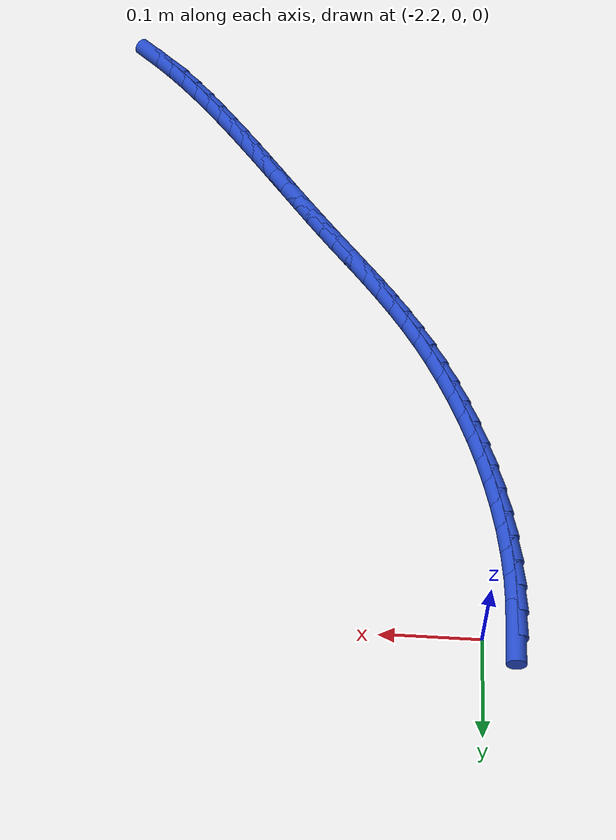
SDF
<sdf version="1.6">
 <world name="default">
  <model name="ground_plane">
   <static>1</static>
   <link name="link">
    <collision name="collision">
     <geometry><plane><normal>0 0 1</normal><size>100 100</size></plane></geometry>
     <surface><friction><ode><mu>100</mu><mu2>50</mu2></ode></friction></surface>
    </collision>
    <visual name="visual">
     <cast_shadows>0</cast_shadows>
     <geometry><plane><normal>0 0 1</normal><size>100 100</size></plane></geometry>
     <material>
      <script><uri>file://media/materials/scripts/gazebo.material</uri><name>Gazebo/WhiteGlow</name></script>
     </material>
    </visual>
   </link>
  </model>
  <model name="line">
   <link name="link_141">
    <pose>-2.2317835806611317 -0.011039165565982069 0.01 0 1.57 1.5650866040024527</pose>
    <collision name="collision">
     <geometry><cylinder><radius>0.01</radius><length>0.08</length></cylinder></geometry>
    </collision>
    <visual name="visual">
     <material>
      <script><name>Gazebo/Blue</name><uri>file://media/materials/scripts/gazebo.material</uri></script>
     </material>
     <geometry><cylinder><radius>0.01</radius><length>0.08</length></cylinder></geometry>
    </visual>
   </link>
   <link name="link_142">
    <pose>-2.2319349309366285 -0.037546342231970925 0.01 0 1.57 -1.5199906018006</pose>
    <collision name="collision">
     <geometry><cylinder><radius>0.01</radius><length>0.08</length></cylinder></geometry>
    </collision>
    <visual name="visual">
     <material>
      <script><name>Gazebo/Blue</name><uri>file://media/materials/scripts/gazebo.material</uri></script>
     </material>
     <geometry><cylinder><radius>0.01</radius><length>0.08</length></cylinder></geometry>
    </visual>
   </link>
   <link name="link_143">
    <pose>-2.230573007580512 -0.06432976764062222 0.01 0 1.57 -1.4671880170082137</pose>
    <collision name="collision">
     <geometry><cylinder><radius>0.01</radius><length>0.08</length></cylinder></geometry>
    </collision>
    <visual name="visual">
     <material>
      <script><name>Gazebo/Blue</name><uri>file://media/materials/scripts/gazebo.material</uri></script>
     </material>
     <geometry><cylinder><radius>0.01</radius><length>0.08</length></cylinder></geometry>
    </visual>
   </link>
   <link name="link_144">
    <pose>-2.2277693916244923 -0.09129263191255127 0.01 0 1.57 -1.417681721359007</pose>
    <collision name="collision">
     <geometry><cylinder><radius>0.01</radius><length>0.08</length></cylinder></geometry>
    </collision>
    <visual name="visual">
     <material>
      <script><name>Gazebo/Blue</name><uri>file://media/materials/scripts/gazebo.material</uri></script>
     </material>
     <geometry><cylinder><radius>0.01</radius><length>0.08</length></cylinder></geometry>
    </visual>
   </link>
   <link name="link_145">
    <pose>-2.223595664100281 -0.1183381251683735 0.01 0 1.57 -1.3710543251712444</pose>
    <collision name="collision">
     <geometry><cylinder><radius>0.01</radius><length>0.08</length></cylinder></geometry>
    </collision>
    <visual name="visual">
     <material>
      <script><name>Gazebo/Blue</name><uri>file://media/materials/scripts/gazebo.material</uri></script>
     </material>
     <geometry><cylinder><radius>0.01</radius><length>0.08</length></cylinder></geometry>
    </visual>
   </link>
   <link name="link_146">
    <pose>-2.218123406039591 -0.14536943752870501 0.01 0 1.57 -1.3268973169500156</pose>
    <collision name="collision">
     <geometry><cylinder><radius>0.01</radius><length>0.08</length></cylinder></geometry>
    </collision>
    <visual name="visual">
     <material>
      <script><name>Gazebo/Blue</name><uri>file://media/materials/scripts/gazebo.material</uri></script>
     </material>
     <geometry><cylinder><radius>0.01</radius><length>0.08</length></cylinder></geometry>
    </visual>
   </link>
   <link name="link_147">
    <pose>-2.2114241984741336 -0.17228975911415945 0.01 0 1.57 -1.2848154424501188</pose>
    <collision name="collision">
     <geometry><cylinder><radius>0.01</radius><length>0.08</length></cylinder></geometry>
    </collision>
    <visual name="visual">
     <material>
      <script><name>Gazebo/Blue</name><uri>file://media/materials/scripts/gazebo.material</uri></script>
     </material>
     <geometry><cylinder><radius>0.01</radius><length>0.08</length></cylinder></geometry>
    </visual>
   </link>
   <link name="link_148">
    <pose>-2.2035696224356203 -0.19900228004535297 0.01 0 1.57 -1.2444272665834928</pose>
    <collision name="collision">
     <geometry><cylinder><radius>0.01</radius><length>0.08</length></cylinder></geometry>
    </collision>
    <visual name="visual">
     <material>
      <script><name>Gazebo/Blue</name><uri>file://media/materials/scripts/gazebo.material</uri></script>
     </material>
     <geometry><cylinder><radius>0.01</radius><length>0.08</length></cylinder></geometry>
    </visual>
   </link>
   <link name="link_149">
    <pose>-2.1946312589557637 -0.225410190442901 0.01 0 1.57 -1.205363018754189</pose>
    <collision name="collision">
     <geometry><cylinder><radius>0.01</radius><length>0.08</length></cylinder></geometry>
    </collision>
    <visual name="visual">
     <material>
      <script><name>Gazebo/Blue</name><uri>file://media/materials/scripts/gazebo.material</uri></script>
     </material>
     <geometry><cylinder><radius>0.01</radius><length>0.08</length></cylinder></geometry>
    </visual>
   </link>
   <link name="link_150">
    <pose>-2.1846806890662753 -0.2514166804274188 0.01 0 1.57 -1.1672604564578088</pose>
    <collision name="collision">
     <geometry><cylinder><radius>0.01</radius><length>0.08</length></cylinder></geometry>
    </collision>
    <visual name="visual">
     <material>
      <script><name>Gazebo/Blue</name><uri>file://media/materials/scripts/gazebo.material</uri></script>
     </material>
     <geometry><cylinder><radius>0.01</radius><length>0.08</length></cylinder></geometry>
    </visual>
   </link>
   <link name="link_151">
    <pose>-2.1737894937988664 -0.2769249401195216 0.01 0 1.57 -1.1297591747508984</pose>
    <collision name="collision">
     <geometry><cylinder><radius>0.01</radius><length>0.08</length></cylinder></geometry>
    </collision>
    <visual name="visual">
     <material>
      <script><name>Gazebo/Blue</name><uri>file://media/materials/scripts/gazebo.material</uri></script>
     </material>
     <geometry><cylinder><radius>0.01</radius><length>0.08</length></cylinder></geometry>
    </visual>
   </link>
   <link name="link_152">
    <pose>-2.1620292541852497 -0.30183815963982497 0.01 0 1.57 -1.0924935390199184</pose>
    <collision name="collision">
     <geometry><cylinder><radius>0.01</radius><length>0.08</length></cylinder></geometry>
    </collision>
    <visual name="visual">
     <material>
      <script><name>Gazebo/Blue</name><uri>file://media/materials/scripts/gazebo.material</uri></script>
     </material>
     <geometry><cylinder><radius>0.01</radius><length>0.08</length></cylinder></geometry>
    </visual>
   </link>
   <link name="link_153">
    <pose>-2.1494715512571365 -0.3260595291089441 0.01 0 1.57 -1.0550842123099282</pose>
    <collision name="collision">
     <geometry><cylinder><radius>0.01</radius><length>0.08</length></cylinder></geometry>
    </collision>
    <visual name="visual">
     <material>
      <script><name>Gazebo/Blue</name><uri>file://media/materials/scripts/gazebo.material</uri></script>
     </material>
     <geometry><cylinder><radius>0.01</radius><length>0.08</length></cylinder></geometry>
    </visual>
   </link>
   <link name="link_154">
    <pose>-2.1361879660462386 -0.34949223864749424 0.01 0 1.57 -1.0171749786502864</pose>
    <collision name="collision">
     <geometry><cylinder><radius>0.01</radius><length>0.08</length></cylinder></geometry>
    </collision>
    <visual name="visual">
     <material>
      <script><name>Gazebo/Blue</name><uri>file://media/materials/scripts/gazebo.material</uri></script>
     </material>
     <geometry><cylinder><radius>0.01</radius><length>0.08</length></cylinder></geometry>
    </visual>
   </link>
   <link name="link_155">
    <pose>-2.1222503901123013 -0.372041340900433 0.01 0 1.57 -0.9810798189404537</pose>
    <collision name="collision">
     <geometry><cylinder><radius>0.01</radius><length>0.08</length></cylinder></geometry>
    </collision>
    <visual name="visual">
     <material>
      <script><name>Gazebo/Blue</name><uri>file://media/materials/scripts/gazebo.material</uri></script>
     </material>
     <geometry><cylinder><radius>0.01</radius><length>0.08</length></cylinder></geometry>
    </visual>
   </link>
   <link name="link_156">
    <pose>-2.107747838435275 -0.39371459352975935 0.01 0 1.57 -0.9511210106473051</pose>
    <collision name="collision">
     <geometry><cylinder><radius>0.01</radius><length>0.08</length></cylinder></geometry>
    </collision>
    <visual name="visual">
     <material>
      <script><name>Gazebo/Blue</name><uri>file://media/materials/scripts/gazebo.material</uri></script>
     </material>
     <geometry><cylinder><radius>0.01</radius><length>0.08</length></cylinder></geometry>
    </visual>
   </link>
   <link name="link_157">
    <pose>-2.0927950345666413 -0.41467395232179244 0.01 0 1.57 -0.9282007584425888</pose>
    <collision name="collision">
     <geometry><cylinder><radius>0.01</radius><length>0.08</length></cylinder></geometry>
    </collision>
    <visual name="visual">
     <material>
      <script><name>Gazebo/Blue</name><uri>file://media/materials/scripts/gazebo.material</uri></script>
     </material>
     <geometry><cylinder><radius>0.01</radius><length>0.08</length></cylinder></geometry>
    </visual>
   </link>
   <link name="link_158">
    <pose>-2.0775088190052187 -0.4350940703575134 0.01 0 1.57 -0.9127412947638036</pose>
    <collision name="collision">
     <geometry><cylinder><radius>0.01</radius><length>0.08</length></cylinder></geometry>
    </collision>
    <visual name="visual">
     <material>
      <script><name>Gazebo/Blue</name><uri>file://media/materials/scripts/gazebo.material</uri></script>
     </material>
     <geometry><cylinder><radius>0.01</radius><length>0.08</length></cylinder></geometry>
    </visual>
   </link>
   <link name="link_159">
    <pose>-2.0620060322498235 -0.45514960071790356 0.01 0 1.57 -0.9050189957615808</pose>
    <collision name="collision">
     <geometry><cylinder><radius>0.01</radius><length>0.08</length></cylinder></geometry>
    </collision>
    <visual name="visual">
     <material>
      <script><name>Gazebo/Blue</name><uri>file://media/materials/scripts/gazebo.material</uri></script>
     </material>
     <geometry><cylinder><radius>0.01</radius><length>0.08</length></cylinder></geometry>
    </visual>
   </link>
   <link name="link_160">
    <pose>-2.0464035147992723 -0.47501519648394386 0.01 0 1.57 -0.905178156209394</pose>
    <collision name="collision">
     <geometry><cylinder><radius>0.01</radius><length>0.08</length></cylinder></geometry>
    </collision>
    <visual name="visual">
     <material>
      <script><name>Gazebo/Blue</name><uri>file://media/materials/scripts/gazebo.material</uri></script>
     </material>
     <geometry><cylinder><radius>0.01</radius><length>0.08</length></cylinder></geometry>
    </visual>
   </link>
   <link name="link_161">
    <pose>-2.030818107152383 -0.4948655107366159 0.01 0 1.57 -0.9129042623829398</pose>
    <collision name="collision">
     <geometry><cylinder><radius>0.01</radius><length>0.08</length></cylinder></geometry>
    </collision>
    <visual name="visual">
     <material>
      <script><name>Gazebo/Blue</name><uri>file://media/materials/scripts/gazebo.material</uri></script>
     </material>
     <geometry><cylinder><radius>0.01</radius><length>0.08</length></cylinder></geometry>
    </visual>
   </link>
   <link name="link_162">
    <pose>-2.015361266585544 -0.5148683378675132 0.01 0 1.57 -0.9223682362881519</pose>
    <collision name="collision">
     <geometry><cylinder><radius>0.01</radius><length>0.08</length></cylinder></geometry>
    </collision>
    <visual name="visual">
     <material>
      <script><name>Gazebo/Blue</name><uri>file://media/materials/scripts/gazebo.material</uri></script>
     </material>
     <geometry><cylinder><radius>0.01</radius><length>0.08</length></cylinder></geometry>
    </visual>
   </link>
   <link name="link_163">
    <pose>-2.0000515578017066 -0.53507311912265 0.01 0 1.57 -0.9287053636432987</pose>
    <collision name="collision">
     <geometry><cylinder><radius>0.01</radius><length>0.08</length></cylinder></geometry>
    </collision>
    <visual name="visual">
     <material>
      <script><name>Gazebo/Blue</name><uri>file://media/materials/scripts/gazebo.material</uri></script>
     </material>
     <geometry><cylinder><radius>0.01</radius><length>0.08</length></cylinder></geometry>
    </visual>
   </link>
   <link name="link_164">
    <pose>-1.984829145924241 -0.5554294079258824 0.01 0 1.57 -0.9317926630676926</pose>
    <collision name="collision">
     <geometry><cylinder><radius>0.01</radius><length>0.08</length></cylinder></geometry>
    </collision>
    <visual name="visual">
     <material>
      <script><name>Gazebo/Blue</name><uri>file://media/materials/scripts/gazebo.material</uri></script>
     </material>
     <geometry><cylinder><radius>0.01</radius><length>0.08</length></cylinder></geometry>
    </visual>
   </link>
   <link name="link_165">
    <pose>-1.9696317376221197 -0.57588362541825 0.01 0 1.57 -0.931656324836739</pose>
    <collision name="collision">
     <geometry><cylinder><radius>0.01</radius><length>0.08</length></cylinder></geometry>
    </collision>
    <visual name="visual">
     <material>
      <script><name>Gazebo/Blue</name><uri>file://media/materials/scripts/gazebo.material</uri></script>
     </material>
     <geometry><cylinder><radius>0.01</radius><length>0.08</length></cylinder></geometry>
    </visual>
   </link>
   <link name="link_166">
    <pose>-1.9543970395643135 -0.5963821927407946 0.01 0 1.57 -0.9283181162232874</pose>
    <collision name="collision">
     <geometry><cylinder><radius>0.01</radius><length>0.08</length></cylinder></geometry>
    </collision>
    <visual name="visual">
     <material>
      <script><name>Gazebo/Blue</name><uri>file://media/materials/scripts/gazebo.material</uri></script>
     </material>
     <geometry><cylinder><radius>0.01</radius><length>0.08</length></cylinder></geometry>
    </visual>
   </link>
   <link name="link_167">
    <pose>-1.9390627584197937 -0.6168715310345568 0.01 0 1.57 -0.9217955171257994</pose>
    <collision name="collision">
     <geometry><cylinder><radius>0.01</radius><length>0.08</length></cylinder></geometry>
    </collision>
    <visual name="visual">
     <material>
      <script><name>Gazebo/Blue</name><uri>file://media/materials/scripts/gazebo.material</uri></script>
     </material>
     <geometry><cylinder><radius>0.01</radius><length>0.08</length></cylinder></geometry>
    </visual>
   </link>
   <link name="link_168">
    <pose>-1.9235666008575305 -0.6372980614405775 0.01 0 1.57 -0.9121028151796924</pose>
    <collision name="collision">
     <geometry><cylinder><radius>0.01</radius><length>0.08</length></cylinder></geometry>
    </collision>
    <visual name="visual">
     <material>
      <script><name>Gazebo/Blue</name><uri>file://media/materials/scripts/gazebo.material</uri></script>
     </material>
     <geometry><cylinder><radius>0.01</radius><length>0.08</length></cylinder></geometry>
    </visual>
   </link>
   <link name="link_169">
    <pose>-1.9078462735464965 -0.6576082050998975 0.01 0 1.57 -0.8992531305480127</pose>
    <collision name="collision">
     <geometry><cylinder><radius>0.01</radius><length>0.08</length></cylinder></geometry>
    </collision>
    <visual name="visual">
     <material>
      <script><name>Gazebo/Blue</name><uri>file://media/materials/scripts/gazebo.material</uri></script>
     </material>
     <geometry><cylinder><radius>0.01</radius><length>0.08</length></cylinder></geometry>
    </visual>
   </link>
   <link name="link_170">
    <pose>-1.8918394831556617 -0.6777483831535576 0.01 0 1.57 -0.883151253489042</pose>
    <collision name="collision">
     <geometry><cylinder><radius>0.01</radius><length>0.08</length></cylinder></geometry>
    </collision>
    <visual name="visual">
     <material>
      <script><name>Gazebo/Blue</name><uri>file://media/materials/scripts/gazebo.material</uri></script>
     </material>
     <geometry><cylinder><radius>0.01</radius><length>0.08</length></cylinder></geometry>
    </visual>
   </link>
   <link name="link_171">
    <pose>-1.8754835071123537 -0.6976610691164778 0.01 0 1.57 -0.8627248867072908</pose>
    <collision name="collision">
     <geometry><cylinder><radius>0.01</radius><length>0.08</length></cylinder></geometry>
    </collision>
    <visual name="visual">
     <material>
      <script><name>Gazebo/Blue</name><uri>file://media/materials/scripts/gazebo.material</uri></script>
     </material>
     <geometry><cylinder><radius>0.01</radius><length>0.08</length></cylinder></geometry>
    </visual>
   </link>
   <link name="link_172">
    <pose>-1.8587114591778453 -0.7172504443270789 0.01 0 1.57 -0.8373038791401225</pose>
    <collision name="collision">
     <geometry><cylinder><radius>0.01</radius><length>0.08</length></cylinder></geometry>
    </collision>
    <visual name="visual">
     <material>
      <script><name>Gazebo/Blue</name><uri>file://media/materials/scripts/gazebo.material</uri></script>
     </material>
     <geometry><cylinder><radius>0.01</radius><length>0.08</length></cylinder></geometry>
    </visual>
   </link>
   <link name="link_173">
    <pose>-1.8414541133942217 -0.7363991723221496 0.01 0 1.57 -0.8067838614414509</pose>
    <collision name="collision">
     <geometry><cylinder><radius>0.01</radius><length>0.08</length></cylinder></geometry>
    </collision>
    <visual name="visual">
     <material>
      <script><name>Gazebo/Blue</name><uri>file://media/materials/scripts/gazebo.material</uri></script>
     </material>
     <geometry><cylinder><radius>0.01</radius><length>0.08</length></cylinder></geometry>
    </visual>
   </link>
   <link name="link_174">
    <pose>-1.8236422177879272 -0.7549896773792399 0.01 0 1.57 -0.7710666764845165</pose>
    <collision name="collision">
     <geometry><cylinder><radius>0.01</radius><length>0.08</length></cylinder></geometry>
    </collision>
    <visual name="visual">
     <material>
      <script><name>Gazebo/Blue</name><uri>file://media/materials/scripts/gazebo.material</uri></script>
     </material>
     <geometry><cylinder><radius>0.01</radius><length>0.08</length></cylinder></geometry>
    </visual>
   </link>
   <link name="link_175">
    <pose>-1.8052065203854055 -0.7729043837759011 0.01 0 1.57 -0.7300777127640896</pose>
    <collision name="collision">
     <geometry><cylinder><radius>0.01</radius><length>0.08</length></cylinder></geometry>
    </collision>
    <visual name="visual">
     <material>
      <script><name>Gazebo/Blue</name><uri>file://media/materials/scripts/gazebo.material</uri></script>
     </material>
     <geometry><cylinder><radius>0.01</radius><length>0.08</length></cylinder></geometry>
    </visual>
   </link>
  </model>
 </world>
</sdf>
